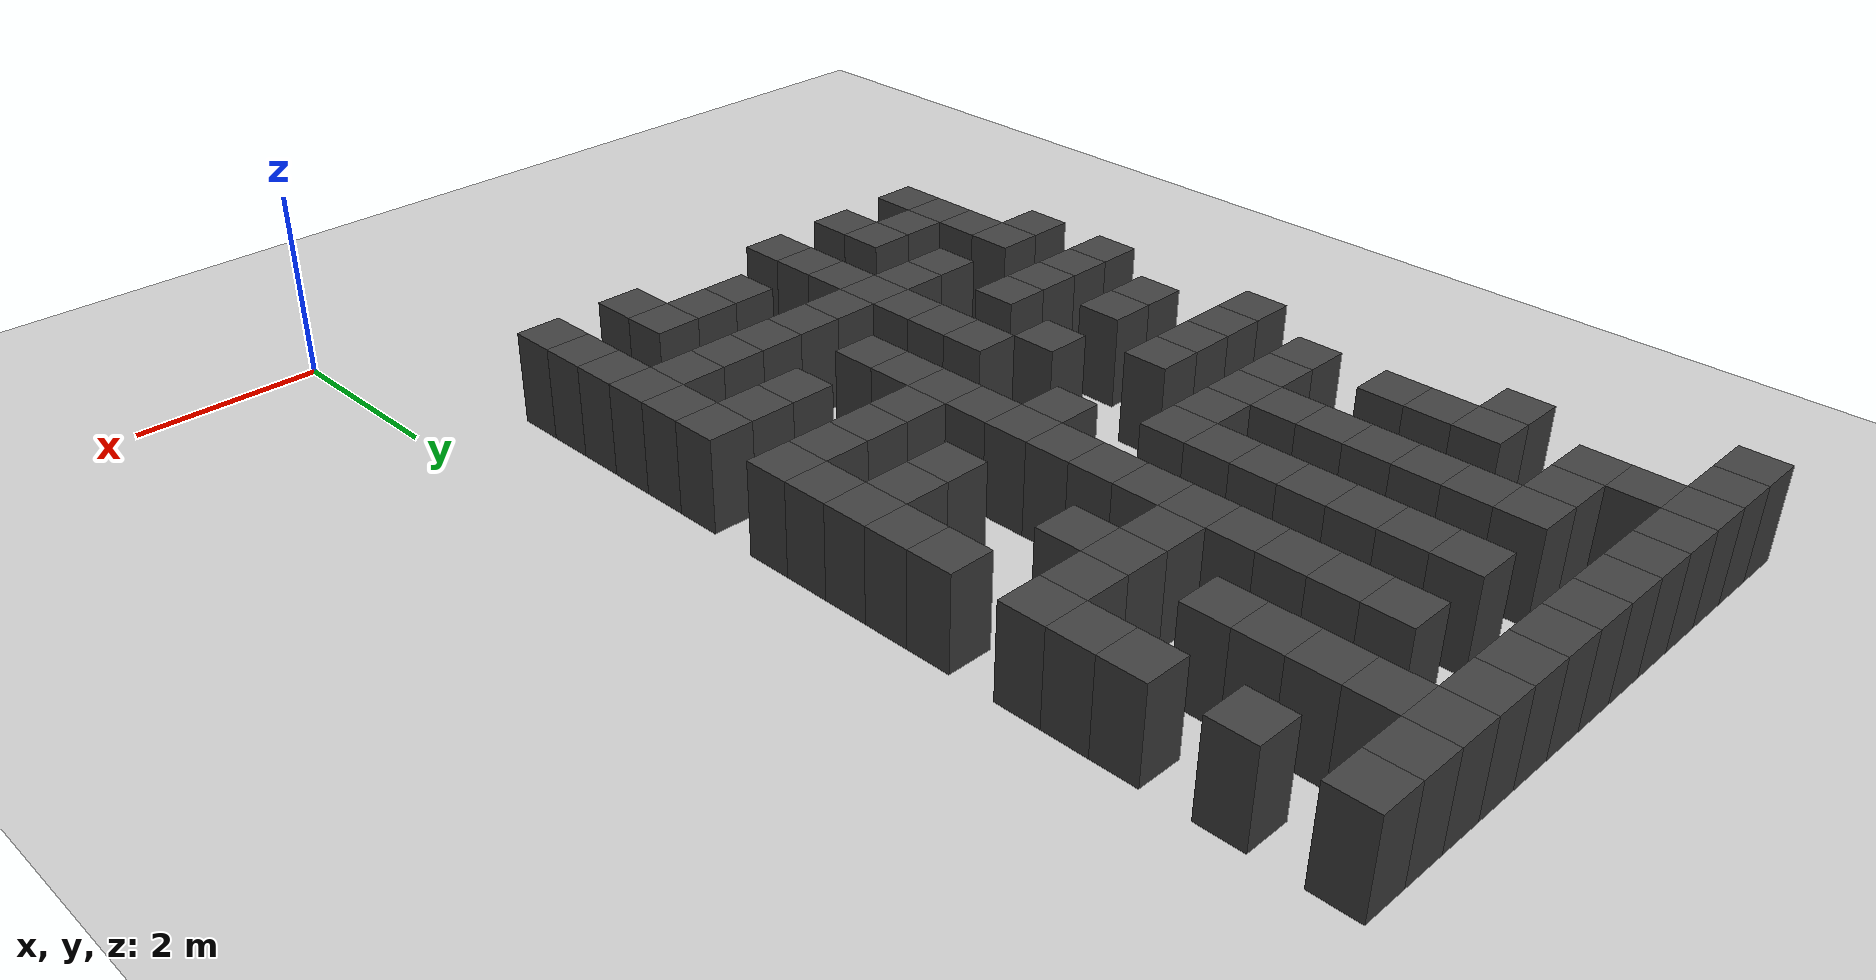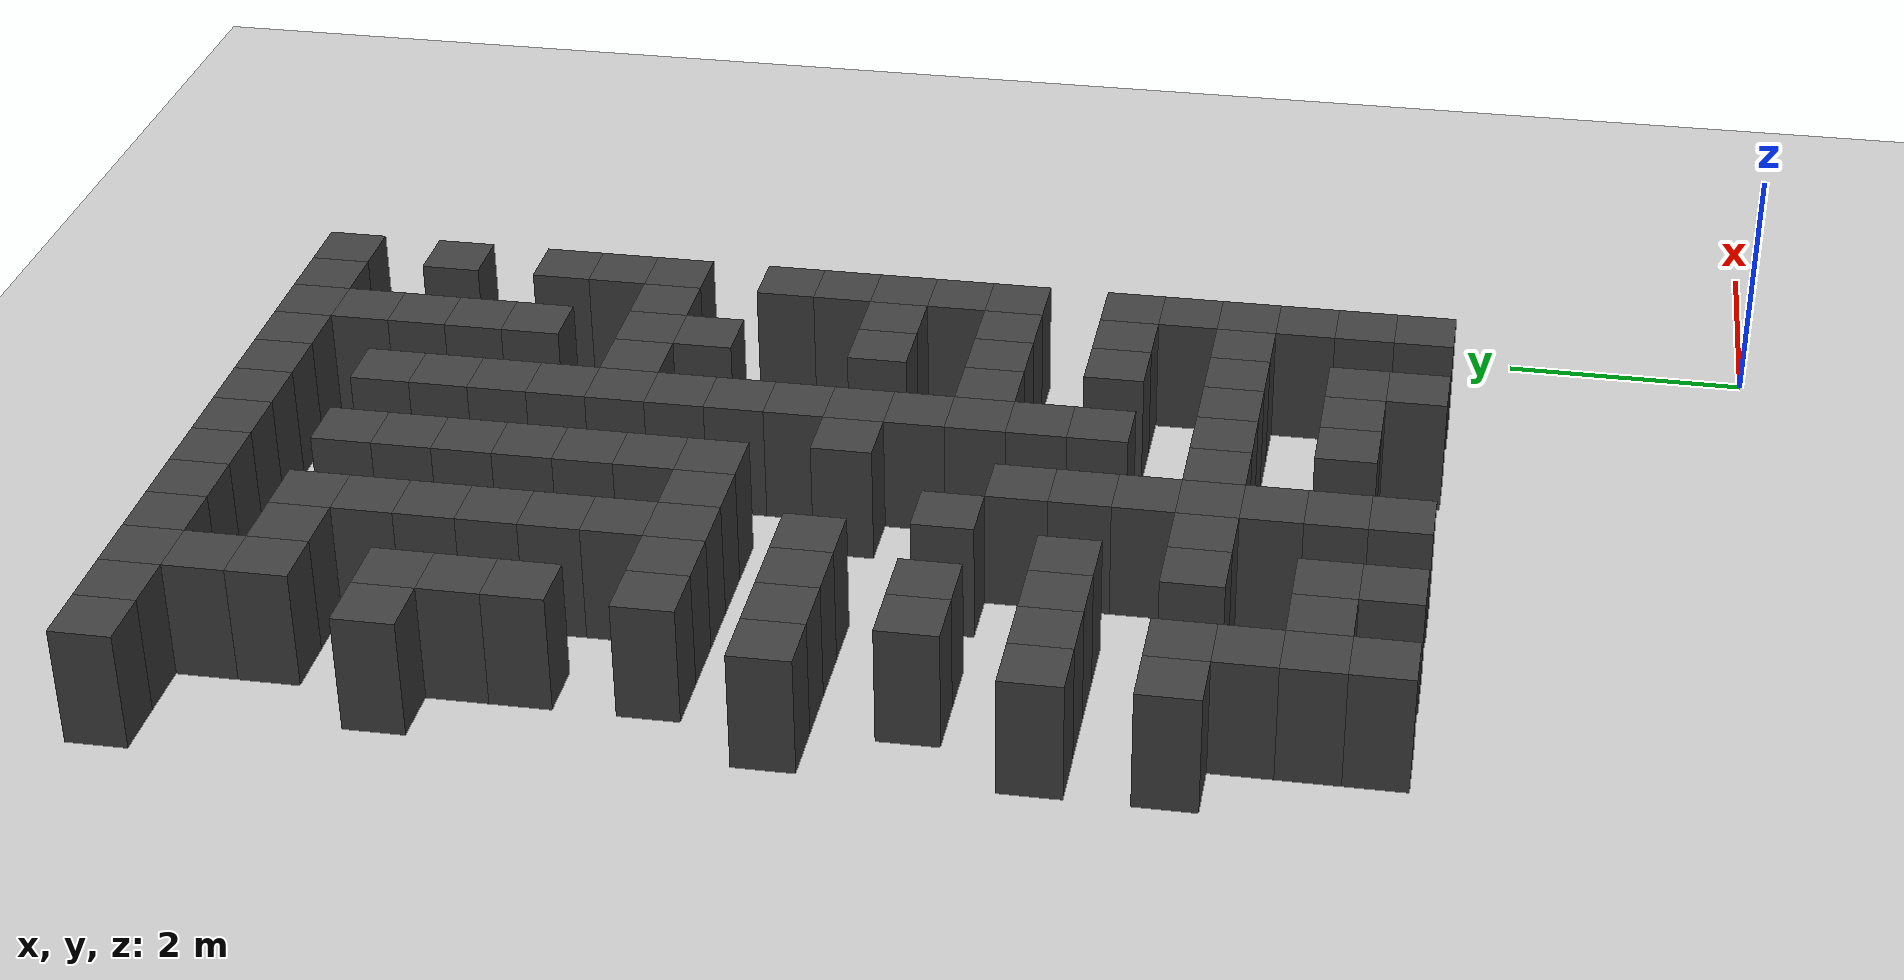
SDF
<sdf version="1.7">
 <world name="map_18553">
  <model name="ground_plane">
   <static>true</static>
   <link name="link">
    <collision name="collision">
     <geometry><plane><normal>0 0 1</normal><size>200 200</size></plane></geometry>
    </collision>
    <visual name="visual">
     <geometry><plane><normal>0 0 1</normal><size>200 200</size></plane></geometry>
     <material><ambient>0.8 0.8 0.8 1</ambient><diffuse>0.8 0.8 0.8 1</diffuse></material>
    </visual>
   </link>
  </model>
  <model name="maze_environment">
   <static>true</static>
   <link name="wall_10">
    <pose>-7.250 12.250 0.500 0 0 0</pose>
    <collision name="col"><geometry><box><size>0.5 0.5 1.0</size></box></geometry></collision>
    <visual name="vis">
     <geometry><box><size>0.5 0.5 1.0</size></box></geometry>
     <material><ambient>0.15 0.15 0.15 1</ambient><diffuse>0.25 0.25 0.25 1</diffuse></material>
    </visual>
   </link>
   <link name="wall_11">
    <pose>-6.750 12.250 0.500 0 0 0</pose>
    <collision name="col"><geometry><box><size>0.5 0.5 1.0</size></box></geometry></collision>
    <visual name="vis">
     <geometry><box><size>0.5 0.5 1.0</size></box></geometry>
     <material><ambient>0.15 0.15 0.15 1</ambient><diffuse>0.25 0.25 0.25 1</diffuse></material>
    </visual>
   </link>
   <link name="wall_12">
    <pose>-6.250 12.250 0.500 0 0 0</pose>
    <collision name="col"><geometry><box><size>0.5 0.5 1.0</size></box></geometry></collision>
    <visual name="vis">
     <geometry><box><size>0.5 0.5 1.0</size></box></geometry>
     <material><ambient>0.15 0.15 0.15 1</ambient><diffuse>0.25 0.25 0.25 1</diffuse></material>
    </visual>
   </link>
   <link name="wall_13">
    <pose>-5.750 12.250 0.500 0 0 0</pose>
    <collision name="col"><geometry><box><size>0.5 0.5 1.0</size></box></geometry></collision>
    <visual name="vis">
     <geometry><box><size>0.5 0.5 1.0</size></box></geometry>
     <material><ambient>0.15 0.15 0.15 1</ambient><diffuse>0.25 0.25 0.25 1</diffuse></material>
    </visual>
   </link>
   <link name="wall_14">
    <pose>-5.250 12.250 0.500 0 0 0</pose>
    <collision name="col"><geometry><box><size>0.5 0.5 1.0</size></box></geometry></collision>
    <visual name="vis">
     <geometry><box><size>0.5 0.5 1.0</size></box></geometry>
     <material><ambient>0.15 0.15 0.15 1</ambient><diffuse>0.25 0.25 0.25 1</diffuse></material>
    </visual>
   </link>
   <link name="wall_15">
    <pose>-4.750 12.250 0.500 0 0 0</pose>
    <collision name="col"><geometry><box><size>0.5 0.5 1.0</size></box></geometry></collision>
    <visual name="vis">
     <geometry><box><size>0.5 0.5 1.0</size></box></geometry>
     <material><ambient>0.15 0.15 0.15 1</ambient><diffuse>0.25 0.25 0.25 1</diffuse></material>
    </visual>
   </link>
   <link name="wall_16">
    <pose>-4.250 12.250 0.500 0 0 0</pose>
    <collision name="col"><geometry><box><size>0.5 0.5 1.0</size></box></geometry></collision>
    <visual name="vis">
     <geometry><box><size>0.5 0.5 1.0</size></box></geometry>
     <material><ambient>0.15 0.15 0.15 1</ambient><diffuse>0.25 0.25 0.25 1</diffuse></material>
    </visual>
   </link>
   <link name="wall_17">
    <pose>-3.750 12.250 0.500 0 0 0</pose>
    <collision name="col"><geometry><box><size>0.5 0.5 1.0</size></box></geometry></collision>
    <visual name="vis">
     <geometry><box><size>0.5 0.5 1.0</size></box></geometry>
     <material><ambient>0.15 0.15 0.15 1</ambient><diffuse>0.25 0.25 0.25 1</diffuse></material>
    </visual>
   </link>
   <link name="wall_18">
    <pose>-3.250 12.250 0.500 0 0 0</pose>
    <collision name="col"><geometry><box><size>0.5 0.5 1.0</size></box></geometry></collision>
    <visual name="vis">
     <geometry><box><size>0.5 0.5 1.0</size></box></geometry>
     <material><ambient>0.15 0.15 0.15 1</ambient><diffuse>0.25 0.25 0.25 1</diffuse></material>
    </visual>
   </link>
   <link name="wall_19">
    <pose>-2.750 12.250 0.500 0 0 0</pose>
    <collision name="col"><geometry><box><size>0.5 0.5 1.0</size></box></geometry></collision>
    <visual name="vis">
     <geometry><box><size>0.5 0.5 1.0</size></box></geometry>
     <material><ambient>0.15 0.15 0.15 1</ambient><diffuse>0.25 0.25 0.25 1</diffuse></material>
    </visual>
   </link>
   <link name="wall_20">
    <pose>-2.250 12.250 0.500 0 0 0</pose>
    <collision name="col"><geometry><box><size>0.5 0.5 1.0</size></box></geometry></collision>
    <visual name="vis">
     <geometry><box><size>0.5 0.5 1.0</size></box></geometry>
     <material><ambient>0.15 0.15 0.15 1</ambient><diffuse>0.25 0.25 0.25 1</diffuse></material>
    </visual>
   </link>
   <link name="wall_21">
    <pose>-1.750 12.250 0.500 0 0 0</pose>
    <collision name="col"><geometry><box><size>0.5 0.5 1.0</size></box></geometry></collision>
    <visual name="vis">
     <geometry><box><size>0.5 0.5 1.0</size></box></geometry>
     <material><ambient>0.15 0.15 0.15 1</ambient><diffuse>0.25 0.25 0.25 1</diffuse></material>
    </visual>
   </link>
   <link name="wall_22">
    <pose>-1.250 12.250 0.500 0 0 0</pose>
    <collision name="col"><geometry><box><size>0.5 0.5 1.0</size></box></geometry></collision>
    <visual name="vis">
     <geometry><box><size>0.5 0.5 1.0</size></box></geometry>
     <material><ambient>0.15 0.15 0.15 1</ambient><diffuse>0.25 0.25 0.25 1</diffuse></material>
    </visual>
   </link>
   <link name="wall_52">
    <pose>-6.250 11.750 0.500 0 0 0</pose>
    <collision name="col"><geometry><box><size>0.5 0.5 1.0</size></box></geometry></collision>
    <visual name="vis">
     <geometry><box><size>0.5 0.5 1.0</size></box></geometry>
     <material><ambient>0.15 0.15 0.15 1</ambient><diffuse>0.25 0.25 0.25 1</diffuse></material>
    </visual>
   </link>
   <link name="wall_53">
    <pose>-2.250 11.750 0.500 0 0 0</pose>
    <collision name="col"><geometry><box><size>0.5 0.5 1.0</size></box></geometry></collision>
    <visual name="vis">
     <geometry><box><size>0.5 0.5 1.0</size></box></geometry>
     <material><ambient>0.15 0.15 0.15 1</ambient><diffuse>0.25 0.25 0.25 1</diffuse></material>
    </visual>
   </link>
   <link name="wall_66">
    <pose>-6.250 11.250 0.500 0 0 0</pose>
    <collision name="col"><geometry><box><size>0.5 0.5 1.0</size></box></geometry></collision>
    <visual name="vis">
     <geometry><box><size>0.5 0.5 1.0</size></box></geometry>
     <material><ambient>0.15 0.15 0.15 1</ambient><diffuse>0.25 0.25 0.25 1</diffuse></material>
    </visual>
   </link>
   <link name="wall_67">
    <pose>-5.750 11.250 0.500 0 0 0</pose>
    <collision name="col"><geometry><box><size>0.5 0.5 1.0</size></box></geometry></collision>
    <visual name="vis">
     <geometry><box><size>0.5 0.5 1.0</size></box></geometry>
     <material><ambient>0.15 0.15 0.15 1</ambient><diffuse>0.25 0.25 0.25 1</diffuse></material>
    </visual>
   </link>
   <link name="wall_68">
    <pose>-5.250 11.250 0.500 0 0 0</pose>
    <collision name="col"><geometry><box><size>0.5 0.5 1.0</size></box></geometry></collision>
    <visual name="vis">
     <geometry><box><size>0.5 0.5 1.0</size></box></geometry>
     <material><ambient>0.15 0.15 0.15 1</ambient><diffuse>0.25 0.25 0.25 1</diffuse></material>
    </visual>
   </link>
   <link name="wall_69">
    <pose>-4.250 11.250 0.500 0 0 0</pose>
    <collision name="col"><geometry><box><size>0.5 0.5 1.0</size></box></geometry></collision>
    <visual name="vis">
     <geometry><box><size>0.5 0.5 1.0</size></box></geometry>
     <material><ambient>0.15 0.15 0.15 1</ambient><diffuse>0.25 0.25 0.25 1</diffuse></material>
    </visual>
   </link>
   <link name="wall_70">
    <pose>-3.250 11.250 0.500 0 0 0</pose>
    <collision name="col"><geometry><box><size>0.5 0.5 1.0</size></box></geometry></collision>
    <visual name="vis">
     <geometry><box><size>0.5 0.5 1.0</size></box></geometry>
     <material><ambient>0.15 0.15 0.15 1</ambient><diffuse>0.25 0.25 0.25 1</diffuse></material>
    </visual>
   </link>
   <link name="wall_71">
    <pose>-2.250 11.250 0.500 0 0 0</pose>
    <collision name="col"><geometry><box><size>0.5 0.5 1.0</size></box></geometry></collision>
    <visual name="vis">
     <geometry><box><size>0.5 0.5 1.0</size></box></geometry>
     <material><ambient>0.15 0.15 0.15 1</ambient><diffuse>0.25 0.25 0.25 1</diffuse></material>
    </visual>
   </link>
   <link name="wall_72">
    <pose>-1.250 11.250 0.500 0 0 0</pose>
    <collision name="col"><geometry><box><size>0.5 0.5 1.0</size></box></geometry></collision>
    <visual name="vis">
     <geometry><box><size>0.5 0.5 1.0</size></box></geometry>
     <material><ambient>0.15 0.15 0.15 1</ambient><diffuse>0.25 0.25 0.25 1</diffuse></material>
    </visual>
   </link>
   <link name="wall_97">
    <pose>-5.250 10.750 0.500 0 0 0</pose>
    <collision name="col"><geometry><box><size>0.5 0.5 1.0</size></box></geometry></collision>
    <visual name="vis">
     <geometry><box><size>0.5 0.5 1.0</size></box></geometry>
     <material><ambient>0.15 0.15 0.15 1</ambient><diffuse>0.25 0.25 0.25 1</diffuse></material>
    </visual>
   </link>
   <link name="wall_98">
    <pose>-4.250 10.750 0.500 0 0 0</pose>
    <collision name="col"><geometry><box><size>0.5 0.5 1.0</size></box></geometry></collision>
    <visual name="vis">
     <geometry><box><size>0.5 0.5 1.0</size></box></geometry>
     <material><ambient>0.15 0.15 0.15 1</ambient><diffuse>0.25 0.25 0.25 1</diffuse></material>
    </visual>
   </link>
   <link name="wall_99">
    <pose>-3.250 10.750 0.500 0 0 0</pose>
    <collision name="col"><geometry><box><size>0.5 0.5 1.0</size></box></geometry></collision>
    <visual name="vis">
     <geometry><box><size>0.5 0.5 1.0</size></box></geometry>
     <material><ambient>0.15 0.15 0.15 1</ambient><diffuse>0.25 0.25 0.25 1</diffuse></material>
    </visual>
   </link>
   <link name="wall_100">
    <pose>-2.250 10.750 0.500 0 0 0</pose>
    <collision name="col"><geometry><box><size>0.5 0.5 1.0</size></box></geometry></collision>
    <visual name="vis">
     <geometry><box><size>0.5 0.5 1.0</size></box></geometry>
     <material><ambient>0.15 0.15 0.15 1</ambient><diffuse>0.25 0.25 0.25 1</diffuse></material>
    </visual>
   </link>
   <link name="wall_117">
    <pose>-6.750 10.250 0.500 0 0 0</pose>
    <collision name="col"><geometry><box><size>0.5 0.5 1.0</size></box></geometry></collision>
    <visual name="vis">
     <geometry><box><size>0.5 0.5 1.0</size></box></geometry>
     <material><ambient>0.15 0.15 0.15 1</ambient><diffuse>0.25 0.25 0.25 1</diffuse></material>
    </visual>
   </link>
   <link name="wall_118">
    <pose>-6.250 10.250 0.500 0 0 0</pose>
    <collision name="col"><geometry><box><size>0.5 0.5 1.0</size></box></geometry></collision>
    <visual name="vis">
     <geometry><box><size>0.5 0.5 1.0</size></box></geometry>
     <material><ambient>0.15 0.15 0.15 1</ambient><diffuse>0.25 0.25 0.25 1</diffuse></material>
    </visual>
   </link>
   <link name="wall_119">
    <pose>-5.250 10.250 0.500 0 0 0</pose>
    <collision name="col"><geometry><box><size>0.5 0.5 1.0</size></box></geometry></collision>
    <visual name="vis">
     <geometry><box><size>0.5 0.5 1.0</size></box></geometry>
     <material><ambient>0.15 0.15 0.15 1</ambient><diffuse>0.25 0.25 0.25 1</diffuse></material>
    </visual>
   </link>
   <link name="wall_120">
    <pose>-4.250 10.250 0.500 0 0 0</pose>
    <collision name="col"><geometry><box><size>0.5 0.5 1.0</size></box></geometry></collision>
    <visual name="vis">
     <geometry><box><size>0.5 0.5 1.0</size></box></geometry>
     <material><ambient>0.15 0.15 0.15 1</ambient><diffuse>0.25 0.25 0.25 1</diffuse></material>
    </visual>
   </link>
   <link name="wall_121">
    <pose>-3.250 10.250 0.500 0 0 0</pose>
    <collision name="col"><geometry><box><size>0.5 0.5 1.0</size></box></geometry></collision>
    <visual name="vis">
     <geometry><box><size>0.5 0.5 1.0</size></box></geometry>
     <material><ambient>0.15 0.15 0.15 1</ambient><diffuse>0.25 0.25 0.25 1</diffuse></material>
    </visual>
   </link>
   <link name="wall_122">
    <pose>-2.250 10.250 0.500 0 0 0</pose>
    <collision name="col"><geometry><box><size>0.5 0.5 1.0</size></box></geometry></collision>
    <visual name="vis">
     <geometry><box><size>0.5 0.5 1.0</size></box></geometry>
     <material><ambient>0.15 0.15 0.15 1</ambient><diffuse>0.25 0.25 0.25 1</diffuse></material>
    </visual>
   </link>
   <link name="wall_123">
    <pose>-1.250 10.250 0.500 0 0 0</pose>
    <collision name="col"><geometry><box><size>0.5 0.5 1.0</size></box></geometry></collision>
    <visual name="vis">
     <geometry><box><size>0.5 0.5 1.0</size></box></geometry>
     <material><ambient>0.15 0.15 0.15 1</ambient><diffuse>0.25 0.25 0.25 1</diffuse></material>
    </visual>
   </link>
   <link name="wall_148">
    <pose>-6.250 9.750 0.500 0 0 0</pose>
    <collision name="col"><geometry><box><size>0.5 0.5 1.0</size></box></geometry></collision>
    <visual name="vis">
     <geometry><box><size>0.5 0.5 1.0</size></box></geometry>
     <material><ambient>0.15 0.15 0.15 1</ambient><diffuse>0.25 0.25 0.25 1</diffuse></material>
    </visual>
   </link>
   <link name="wall_149">
    <pose>-5.250 9.750 0.500 0 0 0</pose>
    <collision name="col"><geometry><box><size>0.5 0.5 1.0</size></box></geometry></collision>
    <visual name="vis">
     <geometry><box><size>0.5 0.5 1.0</size></box></geometry>
     <material><ambient>0.15 0.15 0.15 1</ambient><diffuse>0.25 0.25 0.25 1</diffuse></material>
    </visual>
   </link>
   <link name="wall_150">
    <pose>-4.250 9.750 0.500 0 0 0</pose>
    <collision name="col"><geometry><box><size>0.5 0.5 1.0</size></box></geometry></collision>
    <visual name="vis">
     <geometry><box><size>0.5 0.5 1.0</size></box></geometry>
     <material><ambient>0.15 0.15 0.15 1</ambient><diffuse>0.25 0.25 0.25 1</diffuse></material>
    </visual>
   </link>
   <link name="wall_151">
    <pose>-3.250 9.750 0.500 0 0 0</pose>
    <collision name="col"><geometry><box><size>0.5 0.5 1.0</size></box></geometry></collision>
    <visual name="vis">
     <geometry><box><size>0.5 0.5 1.0</size></box></geometry>
     <material><ambient>0.15 0.15 0.15 1</ambient><diffuse>0.25 0.25 0.25 1</diffuse></material>
    </visual>
   </link>
   <link name="wall_152">
    <pose>-1.250 9.750 0.500 0 0 0</pose>
    <collision name="col"><geometry><box><size>0.5 0.5 1.0</size></box></geometry></collision>
    <visual name="vis">
     <geometry><box><size>0.5 0.5 1.0</size></box></geometry>
     <material><ambient>0.15 0.15 0.15 1</ambient><diffuse>0.25 0.25 0.25 1</diffuse></material>
    </visual>
   </link>
   <link name="wall_168">
    <pose>-6.250 9.250 0.500 0 0 0</pose>
    <collision name="col"><geometry><box><size>0.5 0.5 1.0</size></box></geometry></collision>
    <visual name="vis">
     <geometry><box><size>0.5 0.5 1.0</size></box></geometry>
     <material><ambient>0.15 0.15 0.15 1</ambient><diffuse>0.25 0.25 0.25 1</diffuse></material>
    </visual>
   </link>
   <link name="wall_169">
    <pose>-5.250 9.250 0.500 0 0 0</pose>
    <collision name="col"><geometry><box><size>0.5 0.5 1.0</size></box></geometry></collision>
    <visual name="vis">
     <geometry><box><size>0.5 0.5 1.0</size></box></geometry>
     <material><ambient>0.15 0.15 0.15 1</ambient><diffuse>0.25 0.25 0.25 1</diffuse></material>
    </visual>
   </link>
   <link name="wall_170">
    <pose>-4.250 9.250 0.500 0 0 0</pose>
    <collision name="col"><geometry><box><size>0.5 0.5 1.0</size></box></geometry></collision>
    <visual name="vis">
     <geometry><box><size>0.5 0.5 1.0</size></box></geometry>
     <material><ambient>0.15 0.15 0.15 1</ambient><diffuse>0.25 0.25 0.25 1</diffuse></material>
    </visual>
   </link>
   <link name="wall_171">
    <pose>-3.250 9.250 0.500 0 0 0</pose>
    <collision name="col"><geometry><box><size>0.5 0.5 1.0</size></box></geometry></collision>
    <visual name="vis">
     <geometry><box><size>0.5 0.5 1.0</size></box></geometry>
     <material><ambient>0.15 0.15 0.15 1</ambient><diffuse>0.25 0.25 0.25 1</diffuse></material>
    </visual>
   </link>
   <link name="wall_172">
    <pose>-2.750 9.250 0.500 0 0 0</pose>
    <collision name="col"><geometry><box><size>0.5 0.5 1.0</size></box></geometry></collision>
    <visual name="vis">
     <geometry><box><size>0.5 0.5 1.0</size></box></geometry>
     <material><ambient>0.15 0.15 0.15 1</ambient><diffuse>0.25 0.25 0.25 1</diffuse></material>
    </visual>
   </link>
   <link name="wall_173">
    <pose>-2.250 9.250 0.500 0 0 0</pose>
    <collision name="col"><geometry><box><size>0.5 0.5 1.0</size></box></geometry></collision>
    <visual name="vis">
     <geometry><box><size>0.5 0.5 1.0</size></box></geometry>
     <material><ambient>0.15 0.15 0.15 1</ambient><diffuse>0.25 0.25 0.25 1</diffuse></material>
    </visual>
   </link>
   <link name="wall_174">
    <pose>-1.750 9.250 0.500 0 0 0</pose>
    <collision name="col"><geometry><box><size>0.5 0.5 1.0</size></box></geometry></collision>
    <visual name="vis">
     <geometry><box><size>0.5 0.5 1.0</size></box></geometry>
     <material><ambient>0.15 0.15 0.15 1</ambient><diffuse>0.25 0.25 0.25 1</diffuse></material>
    </visual>
   </link>
   <link name="wall_175">
    <pose>-1.250 9.250 0.500 0 0 0</pose>
    <collision name="col"><geometry><box><size>0.5 0.5 1.0</size></box></geometry></collision>
    <visual name="vis">
     <geometry><box><size>0.5 0.5 1.0</size></box></geometry>
     <material><ambient>0.15 0.15 0.15 1</ambient><diffuse>0.25 0.25 0.25 1</diffuse></material>
    </visual>
   </link>
   <link name="wall_201">
    <pose>-5.250 8.750 0.500 0 0 0</pose>
    <collision name="col"><geometry><box><size>0.5 0.5 1.0</size></box></geometry></collision>
    <visual name="vis">
     <geometry><box><size>0.5 0.5 1.0</size></box></geometry>
     <material><ambient>0.15 0.15 0.15 1</ambient><diffuse>0.25 0.25 0.25 1</diffuse></material>
    </visual>
   </link>
   <link name="wall_202">
    <pose>-4.250 8.750 0.500 0 0 0</pose>
    <collision name="col"><geometry><box><size>0.5 0.5 1.0</size></box></geometry></collision>
    <visual name="vis">
     <geometry><box><size>0.5 0.5 1.0</size></box></geometry>
     <material><ambient>0.15 0.15 0.15 1</ambient><diffuse>0.25 0.25 0.25 1</diffuse></material>
    </visual>
   </link>
   <link name="wall_203">
    <pose>-3.250 8.750 0.500 0 0 0</pose>
    <collision name="col"><geometry><box><size>0.5 0.5 1.0</size></box></geometry></collision>
    <visual name="vis">
     <geometry><box><size>0.5 0.5 1.0</size></box></geometry>
     <material><ambient>0.15 0.15 0.15 1</ambient><diffuse>0.25 0.25 0.25 1</diffuse></material>
    </visual>
   </link>
   <link name="wall_204">
    <pose>-2.250 8.750 0.500 0 0 0</pose>
    <collision name="col"><geometry><box><size>0.5 0.5 1.0</size></box></geometry></collision>
    <visual name="vis">
     <geometry><box><size>0.5 0.5 1.0</size></box></geometry>
     <material><ambient>0.15 0.15 0.15 1</ambient><diffuse>0.25 0.25 0.25 1</diffuse></material>
    </visual>
   </link>
   <link name="wall_217">
    <pose>-6.250 8.250 0.500 0 0 0</pose>
    <collision name="col"><geometry><box><size>0.5 0.5 1.0</size></box></geometry></collision>
    <visual name="vis">
     <geometry><box><size>0.5 0.5 1.0</size></box></geometry>
     <material><ambient>0.15 0.15 0.15 1</ambient><diffuse>0.25 0.25 0.25 1</diffuse></material>
    </visual>
   </link>
   <link name="wall_218">
    <pose>-5.750 8.250 0.500 0 0 0</pose>
    <collision name="col"><geometry><box><size>0.5 0.5 1.0</size></box></geometry></collision>
    <visual name="vis">
     <geometry><box><size>0.5 0.5 1.0</size></box></geometry>
     <material><ambient>0.15 0.15 0.15 1</ambient><diffuse>0.25 0.25 0.25 1</diffuse></material>
    </visual>
   </link>
   <link name="wall_219">
    <pose>-5.250 8.250 0.500 0 0 0</pose>
    <collision name="col"><geometry><box><size>0.5 0.5 1.0</size></box></geometry></collision>
    <visual name="vis">
     <geometry><box><size>0.5 0.5 1.0</size></box></geometry>
     <material><ambient>0.15 0.15 0.15 1</ambient><diffuse>0.25 0.25 0.25 1</diffuse></material>
    </visual>
   </link>
   <link name="wall_220">
    <pose>-4.750 8.250 0.500 0 0 0</pose>
    <collision name="col"><geometry><box><size>0.5 0.5 1.0</size></box></geometry></collision>
    <visual name="vis">
     <geometry><box><size>0.5 0.5 1.0</size></box></geometry>
     <material><ambient>0.15 0.15 0.15 1</ambient><diffuse>0.25 0.25 0.25 1</diffuse></material>
    </visual>
   </link>
   <link name="wall_221">
    <pose>-4.250 8.250 0.500 0 0 0</pose>
    <collision name="col"><geometry><box><size>0.5 0.5 1.0</size></box></geometry></collision>
    <visual name="vis">
     <geometry><box><size>0.5 0.5 1.0</size></box></geometry>
     <material><ambient>0.15 0.15 0.15 1</ambient><diffuse>0.25 0.25 0.25 1</diffuse></material>
    </visual>
   </link>
   <link name="wall_222">
    <pose>-3.250 8.250 0.500 0 0 0</pose>
    <collision name="col"><geometry><box><size>0.5 0.5 1.0</size></box></geometry></collision>
    <visual name="vis">
     <geometry><box><size>0.5 0.5 1.0</size></box></geometry>
     <material><ambient>0.15 0.15 0.15 1</ambient><diffuse>0.25 0.25 0.25 1</diffuse></material>
    </visual>
   </link>
   <link name="wall_223">
    <pose>-1.250 8.250 0.500 0 0 0</pose>
    <collision name="col"><geometry><box><size>0.5 0.5 1.0</size></box></geometry></collision>
    <visual name="vis">
     <geometry><box><size>0.5 0.5 1.0</size></box></geometry>
     <material><ambient>0.15 0.15 0.15 1</ambient><diffuse>0.25 0.25 0.25 1</diffuse></material>
    </visual>
   </link>
   <link name="wall_248">
    <pose>-3.250 7.750 0.500 0 0 0</pose>
    <collision name="col"><geometry><box><size>0.5 0.5 1.0</size></box></geometry></collision>
    <visual name="vis">
     <geometry><box><size>0.5 0.5 1.0</size></box></geometry>
     <material><ambient>0.15 0.15 0.15 1</ambient><diffuse>0.25 0.25 0.25 1</diffuse></material>
    </visual>
   </link>
   <link name="wall_249">
    <pose>-1.250 7.750 0.500 0 0 0</pose>
    <collision name="col"><geometry><box><size>0.5 0.5 1.0</size></box></geometry></collision>
    <visual name="vis">
     <geometry><box><size>0.5 0.5 1.0</size></box></geometry>
     <material><ambient>0.15 0.15 0.15 1</ambient><diffuse>0.25 0.25 0.25 1</diffuse></material>
    </visual>
   </link>
   <link name="wall_264">
    <pose>-6.750 7.250 0.500 0 0 0</pose>
    <collision name="col"><geometry><box><size>0.5 0.5 1.0</size></box></geometry></collision>
    <visual name="vis">
     <geometry><box><size>0.5 0.5 1.0</size></box></geometry>
     <material><ambient>0.15 0.15 0.15 1</ambient><diffuse>0.25 0.25 0.25 1</diffuse></material>
    </visual>
   </link>
   <link name="wall_265">
    <pose>-6.250 7.250 0.500 0 0 0</pose>
    <collision name="col"><geometry><box><size>0.5 0.5 1.0</size></box></geometry></collision>
    <visual name="vis">
     <geometry><box><size>0.5 0.5 1.0</size></box></geometry>
     <material><ambient>0.15 0.15 0.15 1</ambient><diffuse>0.25 0.25 0.25 1</diffuse></material>
    </visual>
   </link>
   <link name="wall_266">
    <pose>-5.750 7.250 0.500 0 0 0</pose>
    <collision name="col"><geometry><box><size>0.5 0.5 1.0</size></box></geometry></collision>
    <visual name="vis">
     <geometry><box><size>0.5 0.5 1.0</size></box></geometry>
     <material><ambient>0.15 0.15 0.15 1</ambient><diffuse>0.25 0.25 0.25 1</diffuse></material>
    </visual>
   </link>
   <link name="wall_267">
    <pose>-5.250 7.250 0.500 0 0 0</pose>
    <collision name="col"><geometry><box><size>0.5 0.5 1.0</size></box></geometry></collision>
    <visual name="vis">
     <geometry><box><size>0.5 0.5 1.0</size></box></geometry>
     <material><ambient>0.15 0.15 0.15 1</ambient><diffuse>0.25 0.25 0.25 1</diffuse></material>
    </visual>
   </link>
   <link name="wall_268">
    <pose>-3.750 7.250 0.500 0 0 0</pose>
    <collision name="col"><geometry><box><size>0.5 0.5 1.0</size></box></geometry></collision>
    <visual name="vis">
     <geometry><box><size>0.5 0.5 1.0</size></box></geometry>
     <material><ambient>0.15 0.15 0.15 1</ambient><diffuse>0.25 0.25 0.25 1</diffuse></material>
    </visual>
   </link>
   <link name="wall_269">
    <pose>-3.250 7.250 0.500 0 0 0</pose>
    <collision name="col"><geometry><box><size>0.5 0.5 1.0</size></box></geometry></collision>
    <visual name="vis">
     <geometry><box><size>0.5 0.5 1.0</size></box></geometry>
     <material><ambient>0.15 0.15 0.15 1</ambient><diffuse>0.25 0.25 0.25 1</diffuse></material>
    </visual>
   </link>
   <link name="wall_270">
    <pose>-2.250 7.250 0.500 0 0 0</pose>
    <collision name="col"><geometry><box><size>0.5 0.5 1.0</size></box></geometry></collision>
    <visual name="vis">
     <geometry><box><size>0.5 0.5 1.0</size></box></geometry>
     <material><ambient>0.15 0.15 0.15 1</ambient><diffuse>0.25 0.25 0.25 1</diffuse></material>
    </visual>
   </link>
   <link name="wall_271">
    <pose>-1.750 7.250 0.500 0 0 0</pose>
    <collision name="col"><geometry><box><size>0.5 0.5 1.0</size></box></geometry></collision>
    <visual name="vis">
     <geometry><box><size>0.5 0.5 1.0</size></box></geometry>
     <material><ambient>0.15 0.15 0.15 1</ambient><diffuse>0.25 0.25 0.25 1</diffuse></material>
    </visual>
   </link>
   <link name="wall_272">
    <pose>-1.250 7.250 0.500 0 0 0</pose>
    <collision name="col"><geometry><box><size>0.5 0.5 1.0</size></box></geometry></collision>
    <visual name="vis">
     <geometry><box><size>0.5 0.5 1.0</size></box></geometry>
     <material><ambient>0.15 0.15 0.15 1</ambient><diffuse>0.25 0.25 0.25 1</diffuse></material>
    </visual>
   </link>
   <link name="wall_295">
    <pose>-3.250 6.750 0.500 0 0 0</pose>
    <collision name="col"><geometry><box><size>0.5 0.5 1.0</size></box></geometry></collision>
    <visual name="vis">
     <geometry><box><size>0.5 0.5 1.0</size></box></geometry>
     <material><ambient>0.15 0.15 0.15 1</ambient><diffuse>0.25 0.25 0.25 1</diffuse></material>
    </visual>
   </link>
   <link name="wall_296">
    <pose>-1.250 6.750 0.500 0 0 0</pose>
    <collision name="col"><geometry><box><size>0.5 0.5 1.0</size></box></geometry></collision>
    <visual name="vis">
     <geometry><box><size>0.5 0.5 1.0</size></box></geometry>
     <material><ambient>0.15 0.15 0.15 1</ambient><diffuse>0.25 0.25 0.25 1</diffuse></material>
    </visual>
   </link>
   <link name="wall_313">
    <pose>-6.250 6.250 0.500 0 0 0</pose>
    <collision name="col"><geometry><box><size>0.5 0.5 1.0</size></box></geometry></collision>
    <visual name="vis">
     <geometry><box><size>0.5 0.5 1.0</size></box></geometry>
     <material><ambient>0.15 0.15 0.15 1</ambient><diffuse>0.25 0.25 0.25 1</diffuse></material>
    </visual>
   </link>
   <link name="wall_314">
    <pose>-5.750 6.250 0.500 0 0 0</pose>
    <collision name="col"><geometry><box><size>0.5 0.5 1.0</size></box></geometry></collision>
    <visual name="vis">
     <geometry><box><size>0.5 0.5 1.0</size></box></geometry>
     <material><ambient>0.15 0.15 0.15 1</ambient><diffuse>0.25 0.25 0.25 1</diffuse></material>
    </visual>
   </link>
   <link name="wall_315">
    <pose>-4.750 6.250 0.500 0 0 0</pose>
    <collision name="col"><geometry><box><size>0.5 0.5 1.0</size></box></geometry></collision>
    <visual name="vis">
     <geometry><box><size>0.5 0.5 1.0</size></box></geometry>
     <material><ambient>0.15 0.15 0.15 1</ambient><diffuse>0.25 0.25 0.25 1</diffuse></material>
    </visual>
   </link>
   <link name="wall_316">
    <pose>-3.250 6.250 0.500 0 0 0</pose>
    <collision name="col"><geometry><box><size>0.5 0.5 1.0</size></box></geometry></collision>
    <visual name="vis">
     <geometry><box><size>0.5 0.5 1.0</size></box></geometry>
     <material><ambient>0.15 0.15 0.15 1</ambient><diffuse>0.25 0.25 0.25 1</diffuse></material>
    </visual>
   </link>
   <link name="wall_317">
    <pose>-2.750 6.250 0.500 0 0 0</pose>
    <collision name="col"><geometry><box><size>0.5 0.5 1.0</size></box></geometry></collision>
    <visual name="vis">
     <geometry><box><size>0.5 0.5 1.0</size></box></geometry>
     <material><ambient>0.15 0.15 0.15 1</ambient><diffuse>0.25 0.25 0.25 1</diffuse></material>
    </visual>
   </link>
   <link name="wall_318">
    <pose>-2.250 6.250 0.500 0 0 0</pose>
    <collision name="col"><geometry><box><size>0.5 0.5 1.0</size></box></geometry></collision>
    <visual name="vis">
     <geometry><box><size>0.5 0.5 1.0</size></box></geometry>
     <material><ambient>0.15 0.15 0.15 1</ambient><diffuse>0.25 0.25 0.25 1</diffuse></material>
    </visual>
   </link>
   <link name="wall_319">
    <pose>-1.750 6.250 0.500 0 0 0</pose>
    <collision name="col"><geometry><box><size>0.5 0.5 1.0</size></box></geometry></collision>
    <visual name="vis">
     <geometry><box><size>0.5 0.5 1.0</size></box></geometry>
     <material><ambient>0.15 0.15 0.15 1</ambient><diffuse>0.25 0.25 0.25 1</diffuse></material>
    </visual>
   </link>
   <link name="wall_320">
    <pose>-1.250 6.250 0.500 0 0 0</pose>
    <collision name="col"><geometry><box><size>0.5 0.5 1.0</size></box></geometry></collision>
    <visual name="vis">
     <geometry><box><size>0.5 0.5 1.0</size></box></geometry>
     <material><ambient>0.15 0.15 0.15 1</ambient><diffuse>0.25 0.25 0.25 1</diffuse></material>
    </visual>
   </link>
   <link name="wall_344">
    <pose>-4.250 5.750 0.500 0 0 0</pose>
    <collision name="col"><geometry><box><size>0.5 0.5 1.0</size></box></geometry></collision>
    <visual name="vis">
     <geometry><box><size>0.5 0.5 1.0</size></box></geometry>
     <material><ambient>0.15 0.15 0.15 1</ambient><diffuse>0.25 0.25 0.25 1</diffuse></material>
    </visual>
   </link>
   <link name="wall_345">
    <pose>-3.250 5.750 0.500 0 0 0</pose>
    <collision name="col"><geometry><box><size>0.5 0.5 1.0</size></box></geometry></collision>
    <visual name="vis">
     <geometry><box><size>0.5 0.5 1.0</size></box></geometry>
     <material><ambient>0.15 0.15 0.15 1</ambient><diffuse>0.25 0.25 0.25 1</diffuse></material>
    </visual>
   </link>
   <link name="wall_361">
    <pose>-6.750 5.250 0.500 0 0 0</pose>
    <collision name="col"><geometry><box><size>0.5 0.5 1.0</size></box></geometry></collision>
    <visual name="vis">
     <geometry><box><size>0.5 0.5 1.0</size></box></geometry>
     <material><ambient>0.15 0.15 0.15 1</ambient><diffuse>0.25 0.25 0.25 1</diffuse></material>
    </visual>
   </link>
   <link name="wall_362">
    <pose>-6.250 5.250 0.500 0 0 0</pose>
    <collision name="col"><geometry><box><size>0.5 0.5 1.0</size></box></geometry></collision>
    <visual name="vis">
     <geometry><box><size>0.5 0.5 1.0</size></box></geometry>
     <material><ambient>0.15 0.15 0.15 1</ambient><diffuse>0.25 0.25 0.25 1</diffuse></material>
    </visual>
   </link>
   <link name="wall_363">
    <pose>-5.750 5.250 0.500 0 0 0</pose>
    <collision name="col"><geometry><box><size>0.5 0.5 1.0</size></box></geometry></collision>
    <visual name="vis">
     <geometry><box><size>0.5 0.5 1.0</size></box></geometry>
     <material><ambient>0.15 0.15 0.15 1</ambient><diffuse>0.25 0.25 0.25 1</diffuse></material>
    </visual>
   </link>
   <link name="wall_364">
    <pose>-5.250 5.250 0.500 0 0 0</pose>
    <collision name="col"><geometry><box><size>0.5 0.5 1.0</size></box></geometry></collision>
    <visual name="vis">
     <geometry><box><size>0.5 0.5 1.0</size></box></geometry>
     <material><ambient>0.15 0.15 0.15 1</ambient><diffuse>0.25 0.25 0.25 1</diffuse></material>
    </visual>
   </link>
   <link name="wall_365">
    <pose>-4.250 5.250 0.500 0 0 0</pose>
    <collision name="col"><geometry><box><size>0.5 0.5 1.0</size></box></geometry></collision>
    <visual name="vis">
     <geometry><box><size>0.5 0.5 1.0</size></box></geometry>
     <material><ambient>0.15 0.15 0.15 1</ambient><diffuse>0.25 0.25 0.25 1</diffuse></material>
    </visual>
   </link>
   <link name="wall_366">
    <pose>-3.250 5.250 0.500 0 0 0</pose>
    <collision name="col"><geometry><box><size>0.5 0.5 1.0</size></box></geometry></collision>
    <visual name="vis">
     <geometry><box><size>0.5 0.5 1.0</size></box></geometry>
     <material><ambient>0.15 0.15 0.15 1</ambient><diffuse>0.25 0.25 0.25 1</diffuse></material>
    </visual>
   </link>
   <link name="wall_367">
    <pose>-2.250 5.250 0.500 0 0 0</pose>
    <collision name="col"><geometry><box><size>0.5 0.5 1.0</size></box></geometry></collision>
    <visual name="vis">
     <geometry><box><size>0.5 0.5 1.0</size></box></geometry>
     <material><ambient>0.15 0.15 0.15 1</ambient><diffuse>0.25 0.25 0.25 1</diffuse></material>
    </visual>
   </link>
   <link name="wall_368">
    <pose>-1.750 5.250 0.500 0 0 0</pose>
    <collision name="col"><geometry><box><size>0.5 0.5 1.0</size></box></geometry></collision>
    <visual name="vis">
     <geometry><box><size>0.5 0.5 1.0</size></box></geometry>
     <material><ambient>0.15 0.15 0.15 1</ambient><diffuse>0.25 0.25 0.25 1</diffuse></material>
    </visual>
   </link>
   <link name="wall_369">
    <pose>-1.250 5.250 0.500 0 0 0</pose>
    <collision name="col"><geometry><box><size>0.5 0.5 1.0</size></box></geometry></collision>
    <visual name="vis">
     <geometry><box><size>0.5 0.5 1.0</size></box></geometry>
     <material><ambient>0.15 0.15 0.15 1</ambient><diffuse>0.25 0.25 0.25 1</diffuse></material>
    </visual>
   </link>
   <link name="wall_393">
    <pose>-4.250 4.750 0.500 0 0 0</pose>
    <collision name="col"><geometry><box><size>0.5 0.5 1.0</size></box></geometry></collision>
    <visual name="vis">
     <geometry><box><size>0.5 0.5 1.0</size></box></geometry>
     <material><ambient>0.15 0.15 0.15 1</ambient><diffuse>0.25 0.25 0.25 1</diffuse></material>
    </visual>
   </link>
   <link name="wall_394">
    <pose>-1.250 4.750 0.500 0 0 0</pose>
    <collision name="col"><geometry><box><size>0.5 0.5 1.0</size></box></geometry></collision>
    <visual name="vis">
     <geometry><box><size>0.5 0.5 1.0</size></box></geometry>
     <material><ambient>0.15 0.15 0.15 1</ambient><diffuse>0.25 0.25 0.25 1</diffuse></material>
    </visual>
   </link>
   <link name="wall_414">
    <pose>-6.750 4.250 0.500 0 0 0</pose>
    <collision name="col"><geometry><box><size>0.5 0.5 1.0</size></box></geometry></collision>
    <visual name="vis">
     <geometry><box><size>0.5 0.5 1.0</size></box></geometry>
     <material><ambient>0.15 0.15 0.15 1</ambient><diffuse>0.25 0.25 0.25 1</diffuse></material>
    </visual>
   </link>
   <link name="wall_415">
    <pose>-6.250 4.250 0.500 0 0 0</pose>
    <collision name="col"><geometry><box><size>0.5 0.5 1.0</size></box></geometry></collision>
    <visual name="vis">
     <geometry><box><size>0.5 0.5 1.0</size></box></geometry>
     <material><ambient>0.15 0.15 0.15 1</ambient><diffuse>0.25 0.25 0.25 1</diffuse></material>
    </visual>
   </link>
   <link name="wall_416">
    <pose>-5.250 4.250 0.500 0 0 0</pose>
    <collision name="col"><geometry><box><size>0.5 0.5 1.0</size></box></geometry></collision>
    <visual name="vis">
     <geometry><box><size>0.5 0.5 1.0</size></box></geometry>
     <material><ambient>0.15 0.15 0.15 1</ambient><diffuse>0.25 0.25 0.25 1</diffuse></material>
    </visual>
   </link>
   <link name="wall_417">
    <pose>-4.750 4.250 0.500 0 0 0</pose>
    <collision name="col"><geometry><box><size>0.5 0.5 1.0</size></box></geometry></collision>
    <visual name="vis">
     <geometry><box><size>0.5 0.5 1.0</size></box></geometry>
     <material><ambient>0.15 0.15 0.15 1</ambient><diffuse>0.25 0.25 0.25 1</diffuse></material>
    </visual>
   </link>
   <link name="wall_418">
    <pose>-4.250 4.250 0.500 0 0 0</pose>
    <collision name="col"><geometry><box><size>0.5 0.5 1.0</size></box></geometry></collision>
    <visual name="vis">
     <geometry><box><size>0.5 0.5 1.0</size></box></geometry>
     <material><ambient>0.15 0.15 0.15 1</ambient><diffuse>0.25 0.25 0.25 1</diffuse></material>
    </visual>
   </link>
   <link name="wall_419">
    <pose>-3.750 4.250 0.500 0 0 0</pose>
    <collision name="col"><geometry><box><size>0.5 0.5 1.0</size></box></geometry></collision>
    <visual name="vis">
     <geometry><box><size>0.5 0.5 1.0</size></box></geometry>
     <material><ambient>0.15 0.15 0.15 1</ambient><diffuse>0.25 0.25 0.25 1</diffuse></material>
    </visual>
   </link>
   <link name="wall_420">
    <pose>-3.250 4.250 0.500 0 0 0</pose>
    <collision name="col"><geometry><box><size>0.5 0.5 1.0</size></box></geometry></collision>
    <visual name="vis">
     <geometry><box><size>0.5 0.5 1.0</size></box></geometry>
     <material><ambient>0.15 0.15 0.15 1</ambient><diffuse>0.25 0.25 0.25 1</diffuse></material>
    </visual>
   </link>
   <link name="wall_421">
    <pose>-2.750 4.250 0.500 0 0 0</pose>
    <collision name="col"><geometry><box><size>0.5 0.5 1.0</size></box></geometry></collision>
    <visual name="vis">
     <geometry><box><size>0.5 0.5 1.0</size></box></geometry>
     <material><ambient>0.15 0.15 0.15 1</ambient><diffuse>0.25 0.25 0.25 1</diffuse></material>
    </visual>
   </link>
   <link name="wall_422">
    <pose>-2.250 4.250 0.500 0 0 0</pose>
    <collision name="col"><geometry><box><size>0.5 0.5 1.0</size></box></geometry></collision>
    <visual name="vis">
     <geometry><box><size>0.5 0.5 1.0</size></box></geometry>
     <material><ambient>0.15 0.15 0.15 1</ambient><diffuse>0.25 0.25 0.25 1</diffuse></material>
    </visual>
   </link>
   <link name="wall_423">
    <pose>-1.750 4.250 0.500 0 0 0</pose>
    <collision name="col"><geometry><box><size>0.5 0.5 1.0</size></box></geometry></collision>
    <visual name="vis">
     <geometry><box><size>0.5 0.5 1.0</size></box></geometry>
     <material><ambient>0.15 0.15 0.15 1</ambient><diffuse>0.25 0.25 0.25 1</diffuse></material>
    </visual>
   </link>
   <link name="wall_424">
    <pose>-1.250 4.250 0.500 0 0 0</pose>
    <collision name="col"><geometry><box><size>0.5 0.5 1.0</size></box></geometry></collision>
    <visual name="vis">
     <geometry><box><size>0.5 0.5 1.0</size></box></geometry>
     <material><ambient>0.15 0.15 0.15 1</ambient><diffuse>0.25 0.25 0.25 1</diffuse></material>
    </visual>
   </link>
   <link name="wall_443">
    <pose>-6.250 3.750 0.500 0 0 0</pose>
    <collision name="col"><geometry><box><size>0.5 0.5 1.0</size></box></geometry></collision>
    <visual name="vis">
     <geometry><box><size>0.5 0.5 1.0</size></box></geometry>
     <material><ambient>0.15 0.15 0.15 1</ambient><diffuse>0.25 0.25 0.25 1</diffuse></material>
    </visual>
   </link>
   <link name="wall_444">
    <pose>-4.250 3.750 0.500 0 0 0</pose>
    <collision name="col"><geometry><box><size>0.5 0.5 1.0</size></box></geometry></collision>
    <visual name="vis">
     <geometry><box><size>0.5 0.5 1.0</size></box></geometry>
     <material><ambient>0.15 0.15 0.15 1</ambient><diffuse>0.25 0.25 0.25 1</diffuse></material>
    </visual>
   </link>
   <link name="wall_445">
    <pose>-1.250 3.750 0.500 0 0 0</pose>
    <collision name="col"><geometry><box><size>0.5 0.5 1.0</size></box></geometry></collision>
    <visual name="vis">
     <geometry><box><size>0.5 0.5 1.0</size></box></geometry>
     <material><ambient>0.15 0.15 0.15 1</ambient><diffuse>0.25 0.25 0.25 1</diffuse></material>
    </visual>
   </link>
   <link name="wall_466">
    <pose>-6.250 3.250 0.500 0 0 0</pose>
    <collision name="col"><geometry><box><size>0.5 0.5 1.0</size></box></geometry></collision>
    <visual name="vis">
     <geometry><box><size>0.5 0.5 1.0</size></box></geometry>
     <material><ambient>0.15 0.15 0.15 1</ambient><diffuse>0.25 0.25 0.25 1</diffuse></material>
    </visual>
   </link>
   <link name="wall_467">
    <pose>-5.750 3.250 0.500 0 0 0</pose>
    <collision name="col"><geometry><box><size>0.5 0.5 1.0</size></box></geometry></collision>
    <visual name="vis">
     <geometry><box><size>0.5 0.5 1.0</size></box></geometry>
     <material><ambient>0.15 0.15 0.15 1</ambient><diffuse>0.25 0.25 0.25 1</diffuse></material>
    </visual>
   </link>
   <link name="wall_468">
    <pose>-5.250 3.250 0.500 0 0 0</pose>
    <collision name="col"><geometry><box><size>0.5 0.5 1.0</size></box></geometry></collision>
    <visual name="vis">
     <geometry><box><size>0.5 0.5 1.0</size></box></geometry>
     <material><ambient>0.15 0.15 0.15 1</ambient><diffuse>0.25 0.25 0.25 1</diffuse></material>
    </visual>
   </link>
   <link name="wall_469">
    <pose>-4.250 3.250 0.500 0 0 0</pose>
    <collision name="col"><geometry><box><size>0.5 0.5 1.0</size></box></geometry></collision>
    <visual name="vis">
     <geometry><box><size>0.5 0.5 1.0</size></box></geometry>
     <material><ambient>0.15 0.15 0.15 1</ambient><diffuse>0.25 0.25 0.25 1</diffuse></material>
    </visual>
   </link>
   <link name="wall_470">
    <pose>-3.250 3.250 0.500 0 0 0</pose>
    <collision name="col"><geometry><box><size>0.5 0.5 1.0</size></box></geometry></collision>
    <visual name="vis">
     <geometry><box><size>0.5 0.5 1.0</size></box></geometry>
     <material><ambient>0.15 0.15 0.15 1</ambient><diffuse>0.25 0.25 0.25 1</diffuse></material>
    </visual>
   </link>
   <link name="wall_471">
    <pose>-2.750 3.250 0.500 0 0 0</pose>
    <collision name="col"><geometry><box><size>0.5 0.5 1.0</size></box></geometry></collision>
    <visual name="vis">
     <geometry><box><size>0.5 0.5 1.0</size></box></geometry>
     <material><ambient>0.15 0.15 0.15 1</ambient><diffuse>0.25 0.25 0.25 1</diffuse></material>
    </visual>
   </link>
   <link name="wall_472">
    <pose>-2.250 3.250 0.500 0 0 0</pose>
    <collision name="col"><geometry><box><size>0.5 0.5 1.0</size></box></geometry></collision>
    <visual name="vis">
     <geometry><box><size>0.5 0.5 1.0</size></box></geometry>
     <material><ambient>0.15 0.15 0.15 1</ambient><diffuse>0.25 0.25 0.25 1</diffuse></material>
    </visual>
   </link>
   <link name="wall_473">
    <pose>-1.250 3.250 0.500 0 0 0</pose>
    <collision name="col"><geometry><box><size>0.5 0.5 1.0</size></box></geometry></collision>
    <visual name="vis">
     <geometry><box><size>0.5 0.5 1.0</size></box></geometry>
     <material><ambient>0.15 0.15 0.15 1</ambient><diffuse>0.25 0.25 0.25 1</diffuse></material>
    </visual>
   </link>
   <link name="wall_498">
    <pose>-6.250 2.750 0.500 0 0 0</pose>
    <collision name="col"><geometry><box><size>0.5 0.5 1.0</size></box></geometry></collision>
    <visual name="vis">
     <geometry><box><size>0.5 0.5 1.0</size></box></geometry>
     <material><ambient>0.15 0.15 0.15 1</ambient><diffuse>0.25 0.25 0.25 1</diffuse></material>
    </visual>
   </link>
   <link name="wall_499">
    <pose>-5.250 2.750 0.500 0 0 0</pose>
    <collision name="col"><geometry><box><size>0.5 0.5 1.0</size></box></geometry></collision>
    <visual name="vis">
     <geometry><box><size>0.5 0.5 1.0</size></box></geometry>
     <material><ambient>0.15 0.15 0.15 1</ambient><diffuse>0.25 0.25 0.25 1</diffuse></material>
    </visual>
   </link>
   <link name="wall_500">
    <pose>-4.250 2.750 0.500 0 0 0</pose>
    <collision name="col"><geometry><box><size>0.5 0.5 1.0</size></box></geometry></collision>
    <visual name="vis">
     <geometry><box><size>0.5 0.5 1.0</size></box></geometry>
     <material><ambient>0.15 0.15 0.15 1</ambient><diffuse>0.25 0.25 0.25 1</diffuse></material>
    </visual>
   </link>
   <link name="wall_501">
    <pose>-2.250 2.750 0.500 0 0 0</pose>
    <collision name="col"><geometry><box><size>0.5 0.5 1.0</size></box></geometry></collision>
    <visual name="vis">
     <geometry><box><size>0.5 0.5 1.0</size></box></geometry>
     <material><ambient>0.15 0.15 0.15 1</ambient><diffuse>0.25 0.25 0.25 1</diffuse></material>
    </visual>
   </link>
   <link name="wall_502">
    <pose>-1.250 2.750 0.500 0 0 0</pose>
    <collision name="col"><geometry><box><size>0.5 0.5 1.0</size></box></geometry></collision>
    <visual name="vis">
     <geometry><box><size>0.5 0.5 1.0</size></box></geometry>
     <material><ambient>0.15 0.15 0.15 1</ambient><diffuse>0.25 0.25 0.25 1</diffuse></material>
    </visual>
   </link>
  </model>
 </world>
</sdf>
